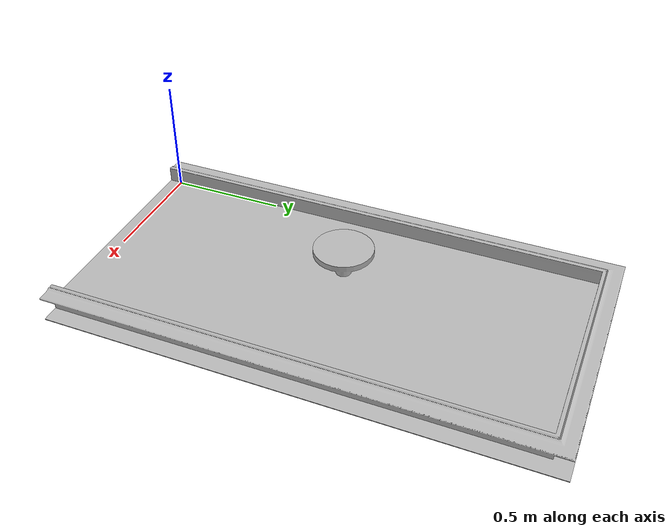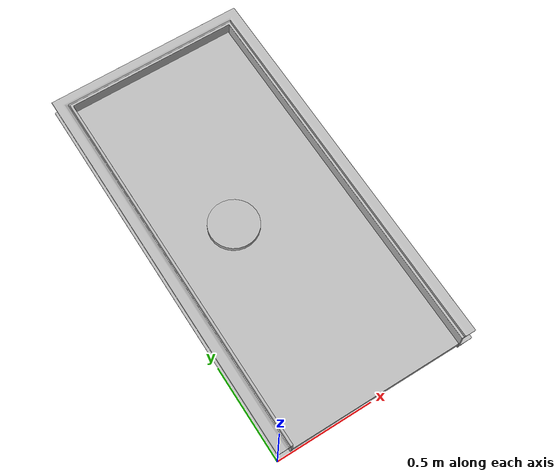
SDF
<sdf version="1.4">
    <model name="door">
        <pose>0 0 0 0 0 0</pose>

        <link name="door_frame">
            <inertial>
                <pose>0.525 1 0.05 0 0 0</pose>
                <mass>30.0</mass>
                <inertia>
                    <ixx>1</ixx>
                    <ixy>0.0</ixy>
                    <ixz>0.0</ixz>
                    <iyy>1</iyy>
                    <iyz>0.0</iyz>
                    <izz>1</izz>
                </inertia>
            </inertial>

            <visual name="visual_frame">
                <pose>0 0 0 0 0 0</pose>
                <geometry>
                    <mesh>
                        <uri>model://door/meshes/frame.stl</uri>
                        <!-- TODO:   Find a proper scale for the mesh -->
	                    <scale> 0.1 0.1 0.1 </scale>
                    </mesh>
                </geometry>
            </visual>

            <collision name="collision_frame">
                <pose>0 0 0 0 0 0</pose> <!-- Match visual pose -->
                <geometry>
                    <mesh>
                        <uri>model://door/meshes/frame.stl</uri>
                        <scale>0.1 0.1 0.1</scale>
                    </mesh>
                </geometry>
            </collision>

            <!-- TODO: Create a "collision" entry with the same geometry than the "visual" entry.-->

        </link>

        <link name="door_body">
            <inertial>
                <pose>0.525 1 0.05 0 0 0</pose>
                <mass>1.0</mass>
                <inertia>
                    <ixx>0.083</ixx>
                    <ixy>0.0</ixy>
                    <ixz>0.0</ixz>
                    <iyy>0.083</iyy>
                    <iyz>0.0</iyz>
                    <izz>0.083</izz>
                </inertia>
            </inertial>

            <collision name="collision_door">
                <pose>0.525 0.995 0.05 0 0 0</pose>
                <geometry>
                    <box>
                        <size>0.9 1.99 0.03</size>
                    </box>
                </geometry>
            </collision>

            <visual name="visual_door">
                <pose>0.525 0.995 0.05 0 0 0</pose>
                <geometry>
                    <box>
                        <size>0.9 1.99 0.03</size>
                    </box>
                </geometry>
            </visual>
        </link>

        <link name="door_handle">
            <inertial>
                <pose>0.8 1.0 0.15 3.1416 0 0</pose>
                <mass>1.0</mass>
                <inertia>
                    <ixx>1</ixx>
                    <ixy>0.0</ixy>
                    <ixz>0.0</ixz>
                    <iyy>1</iyy>
                    <iyz>0.0</iyz>
                    <izz>1</izz>
                </inertia>
            </inertial>

            <visual name="visual_handle">

                <!-- TODO:   Find proper xyz and RPY values-->
                <pose>0.4 1.0 0.015 0 0 0</pose>
                <geometry>
                    <mesh>
                        <uri>model://door/meshes/handle.stl</uri>

                        <!-- TODO:   Find a proper scale for the mesh -->
	                    <scale> 0.005 0.005 0.005 </scale>
                    </mesh>
                </geometry>
            </visual>

            <!-- TODO: Create a "collision" entry with the same geometry than the "visual" entry.-->
            <collision name="collision_handle">
                <pose>0.4 1.0 0.015 0 0 0</pose> <!-- same as visual -->
                <geometry>
                    <mesh>
                        <uri>model://door/meshes/handle.stl</uri>
                        <scale>0.005 0.005 0.005</scale>
                    </mesh>
                </geometry>
            </collision>

        </link>

        <!-- TODO: Create a "joint" relation between door_body and door_handle. Define the mandatory elements and coherent limits.-->

        <joint name="door_hinge" type="revolute">
            <parent>door_frame</parent>
            <child>door_body</child>
            <pose>0.075 0 0.065 0 0 0</pose>
            <axis>
                <xyz>0 1 0</xyz>
                <limit>
                    <lower>-1.5708</lower>  <!-- -90 degrees -->
                    <upper>1.5708</upper>   <!-- +90 degrees -->
                </limit>

                <dynamics>
                    <damping>0.1</damping>
                    <friction>0.1</friction>
                </dynamics>

                <!-- TODO: Define coherent limits for this joint. -->

            </axis>
        </joint>

        <joint name="handle_joint" type="revolute">
            <parent>door_body</parent>
            <child>door_handle</child>
            <pose>0.4 1.0 0.015 0 0 0</pose>
            <axis>
                <xyz>0 0 1</xyz>
                <limit>
                    <lower>-0.5</lower>
                    <upper>0.5</upper>
                </limit>
                <dynamics>
                    <damping>0.1</damping>
                    <friction>0.1</friction>
                </dynamics>
            </axis>
        </joint>

        <joint name="world_joint" type="revolute">
            <child>door_frame</child>
            <parent>world</parent>
            <axis>
                <limit>
                    <lower>0</lower>
                    <upper>0</upper>
                </limit>
                <xyz>0 1 0</xyz>
                <dynamics>
                    <damping>1.0</damping>
                </dynamics>
                <use_parent_model_frame>true</use_parent_model_frame>
            </axis>
            <physics>
                <ode>
                    <cfm_damping>1</cfm_damping>
                </ode>
            </physics>
        </joint>

    </model>
</sdf>
